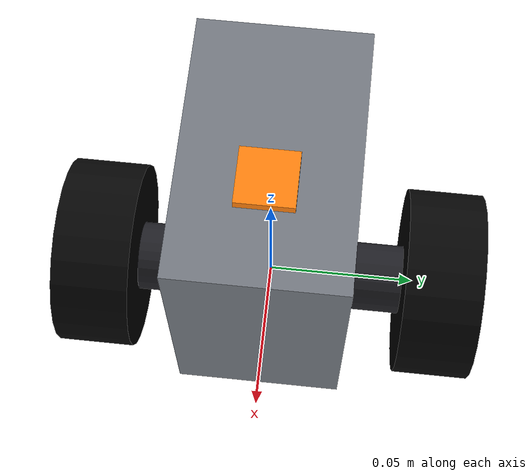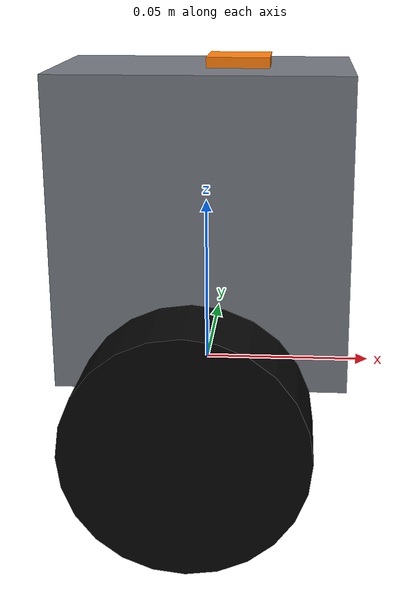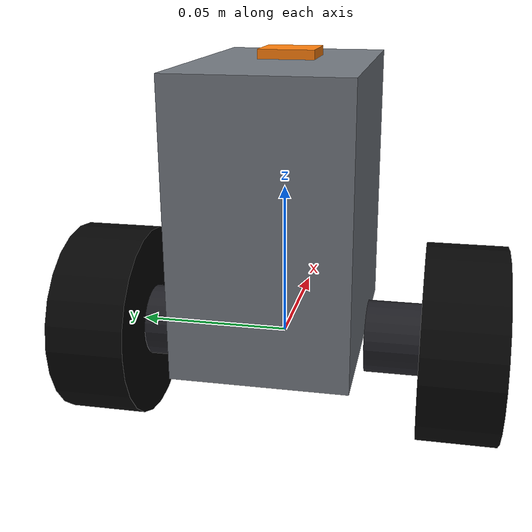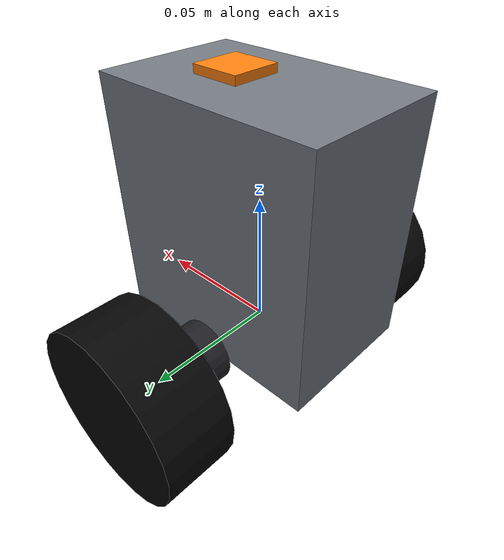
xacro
<?xml version="1.0"?>
<robot xmlns:xacro="http://www.ros.org/wiki/xacro" name="two_wheel_balance_65mm">

  <!-- Wheel geometry: diameter 65 mm. -->
  <xacro:property name="wheel_radius" value="0.0325"/>
  <xacro:property name="wheel_diameter" value="${2.0 * wheel_radius}"/>
  <xacro:property name="wheel_width" value="0.026"/>
  <xacro:property name="wheel_mass" value="0.055"/>
  <xacro:property name="wheel_separation" value="0.118"/>

  <!-- Main body. Its center of mass is deliberately above the axle. -->
  <xacro:property name="body_length" value="0.085"/>
  <xacro:property name="body_width" value="0.054"/>
  <xacro:property name="body_height" value="0.090"/>
  <xacro:property name="body_mass" value="0.420"/>
  <xacro:property name="body_com_z" value="0.045"/>

  <!-- Internal components represented as separate fixed masses. -->
  <xacro:property name="motor_radius" value="0.012"/>
  <xacro:property name="motor_length" value="0.018"/>
  <xacro:property name="motor_mass" value="0.055"/>
  <xacro:property name="motor_y" value="${wheel_separation / 2.0 - wheel_width / 2.0 - motor_length / 2.0}"/>

  <xacro:property name="battery_x" value="0.0"/>
  <xacro:property name="battery_z" value="0.025"/>
  <xacro:property name="battery_length" value="0.052"/>
  <xacro:property name="battery_width" value="0.034"/>
  <xacro:property name="battery_height" value="0.018"/>
  <xacro:property name="battery_mass" value="0.085"/>

  <xacro:property name="board_x" value="0.008"/>
  <xacro:property name="board_z" value="0.070"/>
  <xacro:property name="board_length" value="0.055"/>
  <xacro:property name="board_width" value="0.038"/>
  <xacro:property name="board_height" value="0.006"/>
  <xacro:property name="board_mass" value="0.025"/>

  <xacro:property name="imu_x" value="0.010"/>
  <xacro:property name="imu_z" value="0.090"/>
  <xacro:property name="imu_length" value="0.018"/>
  <xacro:property name="imu_width" value="0.018"/>
  <xacro:property name="imu_height" value="0.006"/>
  <xacro:property name="imu_mass" value="0.006"/>

  <!-- 轮子力矩限制 2.5 Nm -->
  <xacro:property name="wheel_effort_limit" value="2.5"/>
  <!-- 轮子速度限制 35 rad/s -->
  <xacro:property name="wheel_velocity_limit" value="35.0"/>
  <!-- 电机减速比 30:1 -->
  <xacro:property name="motor_gear_ratio" value="30.0"/>

  <material name="body_gray">
    <color rgba="0.45 0.47 0.50 1.0"/>
  </material>
  <material name="wheel_black">
    <color rgba="0.02 0.02 0.02 1.0"/>
  </material>
  <material name="motor_dark">
    <color rgba="0.12 0.12 0.14 1.0"/>
  </material>
  <material name="battery_blue">
    <color rgba="0.05 0.20 0.75 1.0"/>
  </material>
  <material name="board_green">
    <color rgba="0.05 0.45 0.15 1.0"/>
  </material>
  <material name="imu_orange">
    <color rgba="1.00 0.50 0.05 1.0"/>
  </material>

  <xacro:macro name="box_inertial" params="mass x y z ox oy oz">
    <inertial>
      <origin xyz="${ox} ${oy} ${oz}" rpy="0 0 0"/>
      <mass value="${mass}"/>
      <inertia
        ixx="${mass / 12.0 * (y * y + z * z)}"
        ixy="0"
        ixz="0"
        iyy="${mass / 12.0 * (x * x + z * z)}"
        iyz="0"
        izz="${mass / 12.0 * (x * x + y * y)}"/>
    </inertial>
  </xacro:macro>

  <xacro:macro name="cylinder_inertial_y_axis" params="mass radius length">
    <inertial>
      <origin xyz="0 0 0" rpy="0 0 0"/>
      <mass value="${mass}"/>
      <!-- Solid cylinder whose rotation axis is the link y axis. -->
      <inertia
        ixx="${mass / 12.0 * (3.0 * radius * radius + length * length)}"
        ixy="0"
        ixz="0"
        iyy="${0.5 * mass * radius * radius}"
        iyz="0"
        izz="${mass / 12.0 * (3.0 * radius * radius + length * length)}"/>
    </inertial>
  </xacro:macro>

  <xacro:macro name="wheel_link" params="name">
    <link name="${name}">
      <visual>
        <origin xyz="0 0 0" rpy="${pi / 2.0} 0 0"/>
        <geometry>
          <cylinder radius="${wheel_radius}" length="${wheel_width}"/>
        </geometry>
        <material name="wheel_black"/>
      </visual>
      <collision>
        <origin xyz="0 0 0" rpy="${pi / 2.0} 0 0"/>
        <geometry>
          <cylinder radius="${wheel_radius}" length="${wheel_width}"/>
        </geometry>
      </collision>
      <xacro:cylinder_inertial_y_axis
        mass="${wheel_mass}"
        radius="${wheel_radius}"
        length="${wheel_width}"/>
    </link>
  </xacro:macro>

  <xacro:macro name="motor_link" params="name">
    <link name="${name}">
      <visual>
        <origin xyz="0 0 0" rpy="${pi / 2.0} 0 0"/>
        <geometry>
          <cylinder radius="${motor_radius}" length="${motor_length}"/>
        </geometry>
        <material name="motor_dark"/>
      </visual>
      <collision>
        <origin xyz="0 0 0" rpy="${pi / 2.0} 0 0"/>
        <geometry>
          <cylinder radius="${motor_radius}" length="${motor_length}"/>
        </geometry>
      </collision>
      <xacro:cylinder_inertial_y_axis
        mass="${motor_mass}"
        radius="${motor_radius}"
        length="${motor_length}"/>
    </link>
  </xacro:macro>

  <!-- Chassis link: all body geometry is offset from the axle-centered base_link. -->
  <link name="base_link">
    <visual>
      <origin xyz="0 0 ${body_com_z}" rpy="0 0 0"/>
      <geometry>
        <box size="${body_length} ${body_width} ${body_height}"/>
      </geometry>
      <material name="body_gray"/>
    </visual>
    <collision>
      <origin xyz="0 0 ${body_com_z}" rpy="0 0 0"/>
      <geometry>
        <box size="${body_length} ${body_width} ${body_height}"/>
      </geometry>
    </collision>
    <xacro:box_inertial
      mass="${body_mass}"
      x="${body_length}"
      y="${body_width}"
      z="${body_height}"
      ox="0"
      oy="0"
      oz="${body_com_z}"/>
  </link>

  <xacro:wheel_link name="left_wheel_link"/>
  <joint name="left_wheel_joint" type="continuous">
    <parent link="base_link"/>
    <child link="left_wheel_link"/>
    <origin xyz="0 ${wheel_separation / 2.0} 0" rpy="0 0 0"/>
    <axis xyz="0 1 0"/>
    <limit effort="${wheel_effort_limit}" velocity="${wheel_velocity_limit}"/>
    <dynamics damping="0.002" friction="0.001"/>
  </joint>

  <xacro:wheel_link name="right_wheel_link"/>
  <joint name="right_wheel_joint" type="continuous">
    <parent link="base_link"/>
    <child link="right_wheel_link"/>
    <origin xyz="0 ${-wheel_separation / 2.0} 0" rpy="0 0 0"/>
    <axis xyz="0 1 0"/>
    <limit effort="${wheel_effort_limit}" velocity="${wheel_velocity_limit}"/>
    <dynamics damping="0.002" friction="0.001"/>
  </joint>

  <xacro:motor_link name="left_motor_link"/>
  <joint name="left_motor_joint" type="fixed">
    <parent link="base_link"/>
    <child link="left_motor_link"/>
    <origin xyz="0 ${motor_y} 0" rpy="0 0 0"/>
  </joint>

  <xacro:motor_link name="right_motor_link"/>
  <joint name="right_motor_joint" type="fixed">
    <parent link="base_link"/>
    <child link="right_motor_link"/>
    <origin xyz="0 ${-motor_y} 0" rpy="0 0 0"/>
  </joint>

  <link name="battery_link">
    <visual>
      <geometry>
        <box size="${battery_length} ${battery_width} ${battery_height}"/>
      </geometry>
      <material name="battery_blue"/>
    </visual>
    <collision>
      <geometry>
        <box size="${battery_length} ${battery_width} ${battery_height}"/>
      </geometry>
    </collision>
    <xacro:box_inertial
      mass="${battery_mass}"
      x="${battery_length}"
      y="${battery_width}"
      z="${battery_height}"
      ox="0"
      oy="0"
      oz="0"/>
  </link>
  <joint name="battery_joint" type="fixed">
    <parent link="base_link"/>
    <child link="battery_link"/>
    <origin xyz="${battery_x} 0 ${battery_z}" rpy="0 0 0"/>
  </joint>

  <link name="controller_board_link">
    <visual>
      <geometry>
        <box size="${board_length} ${board_width} ${board_height}"/>
      </geometry>
      <material name="board_green"/>
    </visual>
    <collision>
      <geometry>
        <box size="${board_length} ${board_width} ${board_height}"/>
      </geometry>
    </collision>
    <xacro:box_inertial
      mass="${board_mass}"
      x="${board_length}"
      y="${board_width}"
      z="${board_height}"
      ox="0"
      oy="0"
      oz="0"/>
  </link>
  <joint name="controller_board_joint" type="fixed">
    <parent link="base_link"/>
    <child link="controller_board_link"/>
    <origin xyz="${board_x} 0 ${board_z}" rpy="0 0 0"/>
  </joint>

  <link name="imu_link">
    <visual>
      <geometry>
        <box size="${imu_length} ${imu_width} ${imu_height}"/>
      </geometry>
      <material name="imu_orange"/>
    </visual>
    <collision>
      <geometry>
        <box size="${imu_length} ${imu_width} ${imu_height}"/>
      </geometry>
    </collision>
    <xacro:box_inertial
      mass="${imu_mass}"
      x="${imu_length}"
      y="${imu_width}"
      z="${imu_height}"
      ox="0"
      oy="0"
      oz="0"/>
  </link>
  <joint name="imu_joint" type="fixed">
    <parent link="base_link"/>
    <child link="imu_link"/>
    <origin xyz="${imu_x} 0 ${imu_z}" rpy="0 0 0"/>
  </joint>

  <gazebo>
    <plugin filename="libgazebo_ros2_control.so" name="gazebo_ros2_control">
      <robot_param>robot_description</robot_param>
      <robot_param_node>robot_state_publisher</robot_param_node>
      <parameters>$(find balance_car_description)/config/ros2_control_balance_65mm.yaml</parameters>
    </plugin>
  </gazebo>

  <gazebo reference="base_link">
    <material>Gazebo/Grey</material>
    <selfCollide>false</selfCollide>
  </gazebo>

  <gazebo reference="left_wheel_link">
    <material>Gazebo/Black</material>
    <mu1>1.2</mu1>
    <mu2>0.8</mu2>
    <kp>1000000.0</kp>
    <kd>4.0</kd>
    <minDepth>0.001</minDepth>
    <maxVel>0.1</maxVel>
  </gazebo>

  <gazebo reference="right_wheel_link">
    <material>Gazebo/Black</material>
    <mu1>1.2</mu1>
    <mu2>0.8</mu2>
    <kp>1000000.0</kp>
    <kd>4.0</kd>
    <minDepth>0.001</minDepth>
    <maxVel>0.1</maxVel>
  </gazebo>

  <gazebo reference="left_motor_link">
    <material>Gazebo/DarkGrey</material>
  </gazebo>

  <gazebo reference="right_motor_link">
    <material>Gazebo/DarkGrey</material>
  </gazebo>

  <gazebo reference="battery_link">
    <material>Gazebo/Blue</material>
  </gazebo>

  <gazebo reference="controller_board_link">
    <material>Gazebo/Green</material>
  </gazebo>

  <gazebo reference="imu_link">
    <material>Gazebo/Orange</material>
    <sensor name="imu_sensor" type="imu">
      <always_on>true</always_on>
      <!-- 200 Hz 已是工业级平衡车真车标准（MPU6050 默认 100~200 Hz）。
           降到 200 Hz 后 Python rclpy 单线程 executor 压力小很多，
           且仍是控制率 200 Hz 的 1x，足够 PD 计算。-->
      <update_rate>400</update_rate>
      <visualize>false</visualize>
      <imu>
        <angular_velocity>
          <x>
            <noise type="gaussian">
              <mean>0.0</mean>
              <stddev>0.0002</stddev>
              <bias_mean>0.0</bias_mean>
              <bias_stddev>0.00002</bias_stddev>
            </noise>
          </x>
          <y>
            <noise type="gaussian">
              <mean>0.0</mean>
              <stddev>0.0002</stddev>
              <bias_mean>0.0</bias_mean>
              <bias_stddev>0.00002</bias_stddev>
            </noise>
          </y>
          <z>
            <noise type="gaussian">
              <mean>0.0</mean>
              <stddev>0.0002</stddev>
              <bias_mean>0.0</bias_mean>
              <bias_stddev>0.00002</bias_stddev>
            </noise>
          </z>
        </angular_velocity>
        <linear_acceleration>
          <x>
            <noise type="gaussian">
              <mean>0.0</mean>
              <stddev>0.0010</stddev>
              <bias_mean>0.0</bias_mean>
              <bias_stddev>0.0001</bias_stddev>
            </noise>
          </x>
          <y>
            <noise type="gaussian">
              <mean>0.0</mean>
              <stddev>0.0010</stddev>
              <bias_mean>0.0</bias_mean>
              <bias_stddev>0.0001</bias_stddev>
            </noise>
          </y>
          <z>
            <noise type="gaussian">
              <mean>0.0</mean>
              <stddev>0.0010</stddev>
              <bias_mean>0.0</bias_mean>
              <bias_stddev>0.0001</bias_stddev>
            </noise>
          </z>
        </linear_acceleration>
      </imu>
      <plugin filename="libgazebo_ros_imu_sensor.so" name="imu_plugin">
        <ros>
          <namespace>imu</namespace>
          <remapping>~/out:=data</remapping>
        </ros>
        <frame_name>imu_link</frame_name>
        <initial_orientation_as_reference>false</initial_orientation_as_reference>
      </plugin>
    </sensor>
  </gazebo>

  <ros2_control name="GazeboSystem" type="system">
    <hardware>
      <plugin>gazebo_ros2_control/GazeboSystem</plugin>
    </hardware>

    <joint name="left_wheel_joint">
      <command_interface name="velocity">
        <param name="min">${-wheel_velocity_limit}</param>
        <param name="max">${wheel_velocity_limit}</param>
      </command_interface>
      <command_interface name="effort">
        <param name="min">${-wheel_effort_limit}</param>
        <param name="max">${wheel_effort_limit}</param>
      </command_interface>
      <state_interface name="position"/>
      <state_interface name="velocity"/>
      <state_interface name="effort"/>
      <param name="mechanical_reduction">${motor_gear_ratio}</param>
    </joint>

    <joint name="right_wheel_joint">
      <command_interface name="velocity">
        <param name="min">${-wheel_velocity_limit}</param>
        <param name="max">${wheel_velocity_limit}</param>
      </command_interface>
      <command_interface name="effort">
        <param name="min">${-wheel_effort_limit}</param>
        <param name="max">${wheel_effort_limit}</param>
      </command_interface>
      <state_interface name="position"/>
      <state_interface name="velocity"/>
      <state_interface name="effort"/>
      <param name="mechanical_reduction">${motor_gear_ratio}</param>
    </joint>

    <sensor name="imu_sensor">
      <state_interface name="orientation.x"/>
      <state_interface name="orientation.y"/>
      <state_interface name="orientation.z"/>
      <state_interface name="orientation.w"/>
      <state_interface name="angular_velocity.x"/>
      <state_interface name="angular_velocity.y"/>
      <state_interface name="angular_velocity.z"/>
      <state_interface name="linear_acceleration.x"/>
      <state_interface name="linear_acceleration.y"/>
      <state_interface name="linear_acceleration.z"/>
    </sensor>
  </ros2_control>

</robot>
